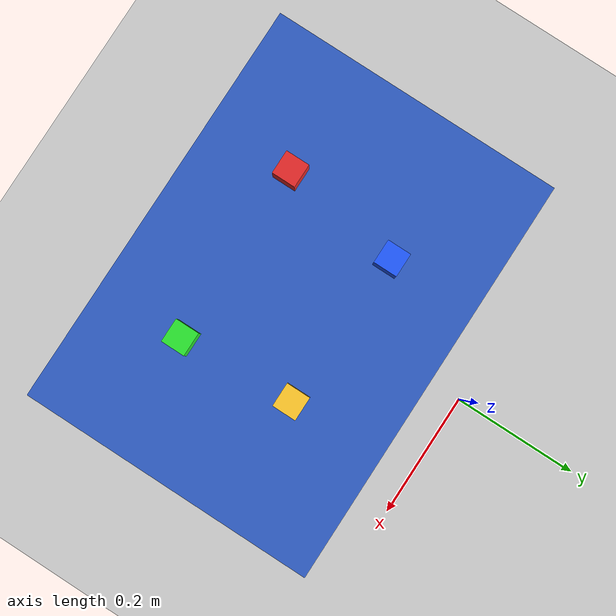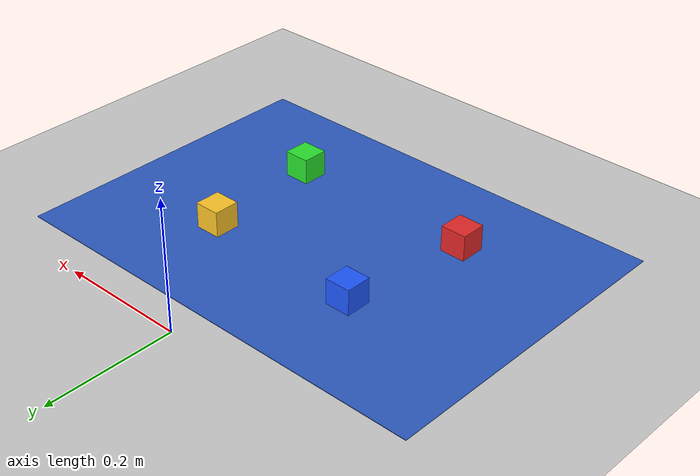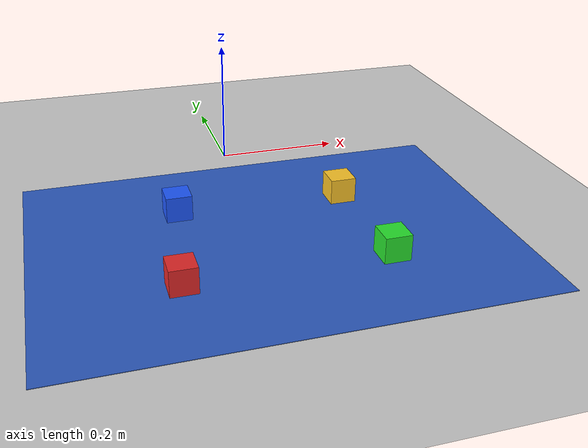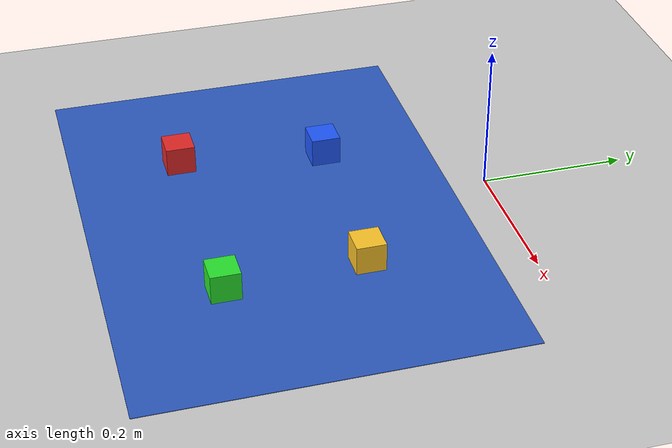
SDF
<?xml version="1.0" ?>
<sdf version="1.6">
  <world name="holoassist_gazebo_sim">

    <physics name="default_physics" type="ode">
      <max_step_size>0.001</max_step_size>
      <real_time_factor>1.0</real_time_factor>
      <real_time_update_rate>1000</real_time_update_rate>
    </physics>

    <include><uri>model://sun</uri></include>
    <include><uri>model://ground_plane</uri></include>

    <model name="workspace_board">
      <static>true</static>
      <!-- centre at Y=-0.30 (workspace_frame Y offset), 5mm below Z=0 so top is at Z=0 -->
      <pose>0 -0.30 -0.005 0 0 0</pose>
      <link name="board_link">
        <collision name="collision">
          <geometry><box><size>0.700 0.500 0.010</size></box></geometry>
          <surface>
            <friction><ode><mu>0.8</mu><mu2>0.8</mu2></ode></friction>
          </surface>
        </collision>
        <visual name="visual">
          <geometry><box><size>0.700 0.500 0.010</size></box></geometry>
          <material>
            <ambient>0.12 0.24 0.54 1</ambient>
            <diffuse>0.18 0.36 0.76 1</diffuse>
          </material>
        </visual>
      </link>
    </model>

    <!-- Physics cubes (dynamic, 4cm, ~50g each).
         Positions in base_link frame = workspace_frame offset (0, -0.30, 0)
         + cube positions from sim_cubes.yaml default_cube_centers_xyz_yaw. -->

    <model name="april_cube_1">
      <pose>-0.150 -0.400 0.020 0 0 0</pose>
      <link name="cube_link">
        <inertial>
          <mass>0.05</mass>
          <inertia>
            <ixx>1.33e-5</ixx><iyy>1.33e-5</iyy><izz>1.33e-5</izz>
            <ixy>0</ixy><ixz>0</ixz><iyz>0</iyz>
          </inertia>
        </inertial>
        <collision name="collision">
          <geometry><box><size>0.040 0.040 0.040</size></box></geometry>
          <surface>
            <friction><ode><mu>0.6</mu><mu2>0.6</mu2></ode></friction>
          </surface>
        </collision>
        <visual name="visual">
          <geometry><box><size>0.040 0.040 0.040</size></box></geometry>
          <material><ambient>0.85 0.10 0.10 1</ambient><diffuse>0.90 0.16 0.16 1</diffuse></material>
        </visual>
      </link>
    </model>

    <model name="april_cube_2">
      <pose>0.150 -0.400 0.020 0 0 0</pose>
      <link name="cube_link">
        <inertial>
          <mass>0.05</mass>
          <inertia>
            <ixx>1.33e-5</ixx><iyy>1.33e-5</iyy><izz>1.33e-5</izz>
            <ixy>0</ixy><ixz>0</ixz><iyz>0</iyz>
          </inertia>
        </inertial>
        <collision name="collision">
          <geometry><box><size>0.040 0.040 0.040</size></box></geometry>
          <surface>
            <friction><ode><mu>0.6</mu><mu2>0.6</mu2></ode></friction>
          </surface>
        </collision>
        <visual name="visual">
          <geometry><box><size>0.040 0.040 0.040</size></box></geometry>
          <material><ambient>0.10 0.80 0.12 1</ambient><diffuse>0.16 0.90 0.18 1</diffuse></material>
        </visual>
      </link>
    </model>

    <model name="april_cube_3">
      <pose>-0.120 -0.200 0.020 0 0 0</pose>
      <link name="cube_link">
        <inertial>
          <mass>0.05</mass>
          <inertia>
            <ixx>1.33e-5</ixx><iyy>1.33e-5</iyy><izz>1.33e-5</izz>
            <ixy>0</ixy><ixz>0</ixz><iyz>0</iyz>
          </inertia>
        </inertial>
        <collision name="collision">
          <geometry><box><size>0.040 0.040 0.040</size></box></geometry>
          <surface>
            <friction><ode><mu>0.6</mu><mu2>0.6</mu2></ode></friction>
          </surface>
        </collision>
        <visual name="visual">
          <geometry><box><size>0.040 0.040 0.040</size></box></geometry>
          <material><ambient>0.08 0.26 0.95 1</ambient><diffuse>0.12 0.35 1.00 1</diffuse></material>
        </visual>
      </link>
    </model>

    <model name="april_cube_4">
      <pose>0.140 -0.210 0.020 0 0 0</pose>
      <link name="cube_link">
        <inertial>
          <mass>0.05</mass>
          <inertia>
            <ixx>1.33e-5</ixx><iyy>1.33e-5</iyy><izz>1.33e-5</izz>
            <ixy>0</ixy><ixz>0</ixz><iyz>0</iyz>
          </inertia>
        </inertial>
        <collision name="collision">
          <geometry><box><size>0.040 0.040 0.040</size></box></geometry>
          <surface>
            <friction><ode><mu>0.6</mu><mu2>0.6</mu2></ode></friction>
          </surface>
        </collision>
        <visual name="visual">
          <geometry><box><size>0.040 0.040 0.040</size></box></geometry>
          <material><ambient>0.95 0.70 0.08 1</ambient><diffuse>1.00 0.78 0.16 1</diffuse></material>
        </visual>
      </link>
    </model>

  </world>
</sdf>
